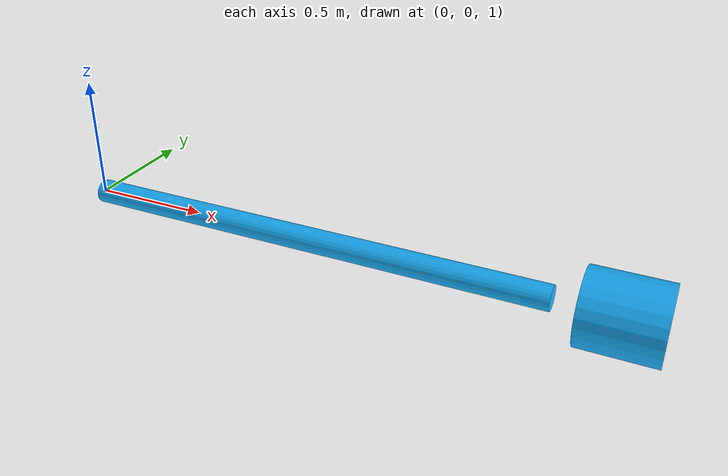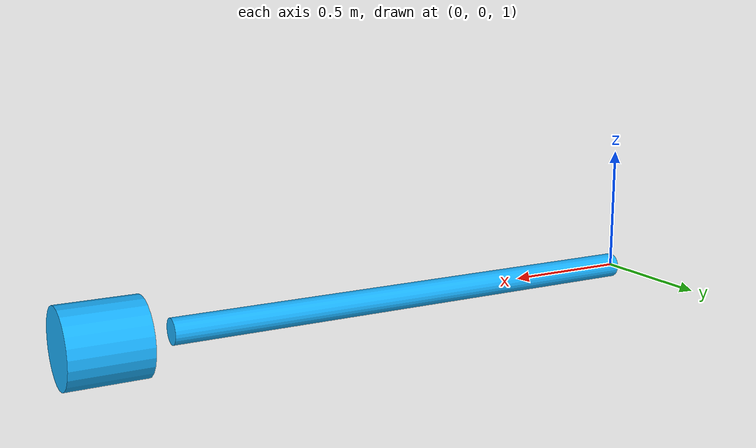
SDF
<?xml version="1.0"?>
<sdf version="1.6">
  <model name="wind_indicator">
    <static>true</static>
    <link name="arrow">
      <!-- Arrow shaft -->
      <visual name="shaft">
        <geometry>
          <cylinder>
            <radius>0.05</radius>
            <length>2.0</length>
          </cylinder>
        </geometry>
        <material>
          <ambient>0.1 0.7 1.0 1</ambient>
          <diffuse>0.1 0.7 1.0 1</diffuse>
          <emissive>0.05 0.35 0.5 1</emissive>
        </material>
        <pose>1.0 0 1.0 0 1.5708 0</pose>
      </visual>
      <!-- Arrow head (cone not supported in Gazebo Classic) -->
      <visual name="head">
        <geometry>
          <cylinder>
            <radius>0.15</radius>
            <length>0.3</length>
          </cylinder>
        </geometry>
        <material>
          <ambient>0.1 0.7 1.0 1</ambient>
          <diffuse>0.1 0.7 1.0 1</diffuse>
        </material>
        <pose>2.25 0 1.0 0 1.5708 0</pose>
      </visual>
    </link>
  </model>
</sdf>
